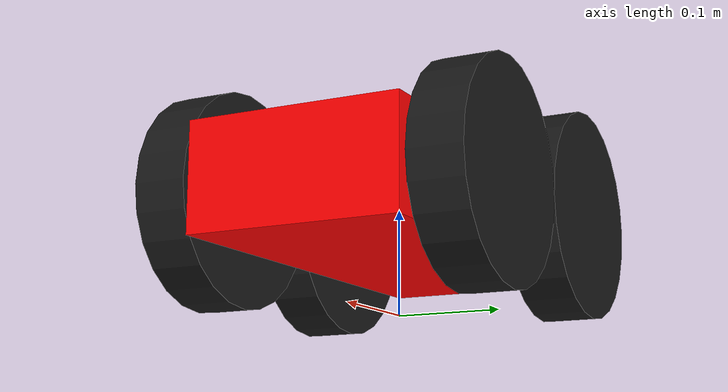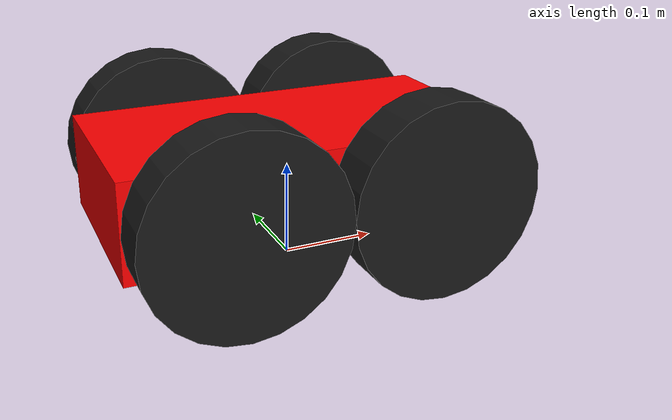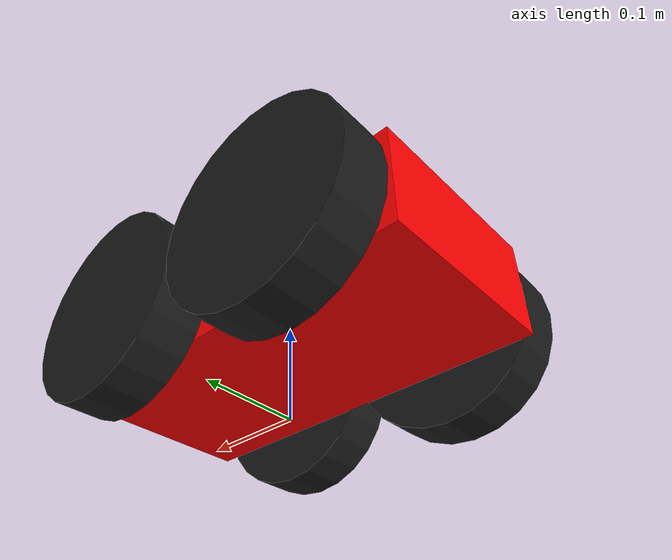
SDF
<?xml version="1.0"?>
<sdf version="1.6">
  <model name="my_car">
    <static>false</static>

    <link name="chassis">
      <pose>0 0 0.1 0 0 0</pose>
      <inertial>
        <mass>1.0</mass>
        <inertia>
          <ixx>0.1</ixx>
          <ixy>0</ixy>
          <ixz>0</ixz>
          <iyy>0.1</iyy>
          <iyz>0</iyz>
          <izz>0.1</izz>
        </inertia>
      </inertial>
      <collision name="collision">
        <geometry>
          <box>
            <size>0.4 0.2 0.1</size>
          </box>
        </geometry>
        <surface>
          <friction>
            <ode>
              <mu>1.0</mu>
              <mu2>1.0</mu2>
            </ode>
          </friction>
        </surface>
      </collision>
      <visual name="visual">
        <geometry>
          <box>
            <size>0.4 0.2 0.1</size>
          </box>
        </geometry>
        <material>
          <ambient>1 0 0 1</ambient>
          <diffuse>1 0 0 1</diffuse>
          <specular>0.1 0.1 0.1 1</specular>
        </material>
      </visual>
    </link>

    <!-- Front left wheel -->
    <link name="front_left_wheel">
      <pose>0.1 0.13 0.1 0 1.5707 1.5707</pose>
      <inertial>
        <mass>0.2</mass>
        <inertia>
          <ixx>0.0001</ixx>
          <ixy>0</ixy>
          <ixz>0</ixz>
          <iyy>0.0001</iyy>
          <iyz>0</iyz>
          <izz>0.0001</izz>
        </inertia>
      </inertial>
      <collision name="collision">
        <geometry>
          <cylinder>
            <radius>0.1</radius>
            <length>0.05</length>
          </cylinder>
        </geometry>
        <surface>
          <friction>
            <ode>
              <mu>100.0</mu>
              <mu2>50.0</mu2>
              <fdir1>0 0 1</fdir1>
            </ode>
          </friction>
        </surface>
      </collision>
      <visual name="visual">
        <geometry>
          <cylinder>
            <radius>0.1</radius>
            <length>0.05</length>
          </cylinder>
        </geometry>
        <material>
          <ambient>0.1 0.1 0.1 1</ambient>
          <diffuse>0.1 0.1 0.1 1</diffuse>
        </material>
      </visual>
    </link>

    <!-- Front right wheel -->
    <link name="front_right_wheel">
      <pose>0.1 -0.13 0.1 0 1.5707 1.5707</pose>
      <inertial>
        <mass>0.2</mass>
        <inertia>
          <ixx>0.0001</ixx>
          <ixy>0</ixy>
          <ixz>0</ixz>
          <iyy>0.0001</iyy>
          <iyz>0</iyz>
          <izz>0.0001</izz>
        </inertia>
      </inertial>
      <collision name="collision">
        <geometry>
          <cylinder>
            <radius>0.1</radius>
            <length>0.05</length>
          </cylinder>
        </geometry>
        <surface>
          <friction>
            <ode>
              <mu>100.0</mu>
              <mu2>50.0</mu2>
              <fdir1>0 0 1</fdir1>
            </ode>
          </friction>
        </surface>
      </collision>
      <visual name="visual">
        <geometry>
          <cylinder>
            <radius>0.1</radius>
            <length>0.05</length>
          </cylinder>
        </geometry>
        <material>
          <ambient>0.1 0.1 0.1 1</ambient>
          <diffuse>0.1 0.1 0.1 1</diffuse>
        </material>
      </visual>
    </link>

    <!-- Rear left wheel -->
    <link name="rear_left_wheel">
      <pose>-0.1 0.13 0.1 0 1.5707 1.5707</pose>
      <inertial>
        <mass>0.2</mass>
        <inertia>
          <ixx>0.0001</ixx>
          <ixy>0</ixy>
          <ixz>0</ixz>
          <iyy>0.0001</iyy>
          <iyz>0</iyz>
          <izz>0.0001</izz>
        </inertia>
      </inertial>
      <collision name="collision">
        <geometry>
          <cylinder>
            <radius>0.1</radius>
            <length>0.05</length>
          </cylinder>
        </geometry>
        <surface>
          <friction>
            <ode>
              <mu>100.0</mu>
              <mu2>50.0</mu2>
              <fdir1>0 0 1</fdir1>
            </ode>
          </friction>
        </surface>
      </collision>
      <visual name="visual">
        <geometry>
          <cylinder>
            <radius>0.1</radius>
            <length>0.05</length>
          </cylinder>
        </geometry>
        <material>
          <ambient>0.1 0.1 0.1 1</ambient>
          <diffuse>0.1 0.1 0.1 1</diffuse>
        </material>
      </visual>
    </link>

    <!-- Rear right wheel -->
    <link name="rear_right_wheel">
      <pose>-0.1 -0.13 0.1 0 1.5707 1.5707</pose>
      <inertial>
        <mass>0.2</mass>
        <inertia>
          <ixx>0.0001</ixx>
          <ixy>0</ixy>
          <ixz>0</ixz>
          <iyy>0.0001</iyy>
          <iyz>0</iyz>
          <izz>0.0001</izz>
        </inertia>
      </inertial>
      <collision name="collision">
        <geometry>
          <cylinder>
            <radius>0.1</radius>
            <length>0.05</length>
          </cylinder>
        </geometry>
        <surface>
          <friction>
            <ode>
              <mu>100.0</mu>
              <mu2>50.0</mu2>
              <fdir1>0 0 1</fdir1>
            </ode>
          </friction>
        </surface>
      </collision>
      <visual name="visual">
        <geometry>
          <cylinder>
            <radius>0.1</radius>
            <length>0.05</length>
          </cylinder>
        </geometry>
        <material>
          <ambient>0.1 0.1 0.1 1</ambient>
          <diffuse>0.1 0.1 0.1 1</diffuse>
        </material>
      </visual>
    </link>

    <!-- Joints -->
    <joint type="revolute" name="front_left_wheel_joint">
      <parent>chassis</parent>
      <child>front_left_wheel</child>
      <axis>
        <xyz>0 0 1</xyz>
        <dynamics>
          <damping>0.1</damping>
          <friction>0.1</friction>
        </dynamics>
        <limit>
          <effort>10</effort>
        </limit>
      </axis>
    </joint>

    <joint type="revolute" name="front_right_wheel_joint">
      <parent>chassis</parent>
      <child>front_right_wheel</child>
      <axis>
        <xyz>0 0 1</xyz>
        <dynamics>
          <damping>0.1</damping>
          <friction>0.1</friction>
        </dynamics>
        <limit>
          <effort>10</effort>
        </limit>
      </axis>
    </joint>

    <joint type="revolute" name="rear_left_wheel_joint">
      <parent>chassis</parent>
      <child>rear_left_wheel</child>
      <axis>
        <xyz>0 0 -1</xyz>
        <dynamics>
          <damping>0.1</damping>
          <friction>0.1</friction>
        </dynamics>
        <limit>
          <effort>10</effort>
        </limit>
      </axis>
    </joint>

    <joint type="revolute" name="rear_right_wheel_joint">
      <parent>chassis</parent>
      <child>rear_right_wheel</child>
      <axis>
        <xyz>0 0 -1</xyz>
        <dynamics>
          <damping>0.1</damping>
          <friction>0.1</friction>
        </dynamics>
        <limit>
          <effort>10</effort>
        </limit>
      </axis>
    </joint>

    <!-- Add differential drive plugin -->
    <plugin name="differential_drive_controller" filename="libgazebo_ros_diff_drive.so">
      <ros>
        <namespace>/my_car</namespace>
      </ros>
      <update_rate>100</update_rate>
      <left_joint>rear_left_wheel_joint</left_joint>
      <right_joint>rear_right_wheel_joint</right_joint>
      <wheel_separation>0.26</wheel_separation>
      <wheel_diameter>0.2</wheel_diameter>
      <max_wheel_torque>10</max_wheel_torque>
      <max_wheel_acceleration>1.0</max_wheel_acceleration>
      <command_topic>cmd_vel</command_topic>
      <odometry_topic>odom</odometry_topic>
      <odometry_frame>odom</odometry_frame>
      <robot_base_frame>chassis</robot_base_frame>
      <publish_wheel_tf>true</publish_wheel_tf>
      <publish_odom_tf>true</publish_odom_tf>
      <publish_wheel_joint_state>true</publish_wheel_joint_state>
      <legacy_mode>false</legacy_mode>
    </plugin>
  </model>
</sdf>
